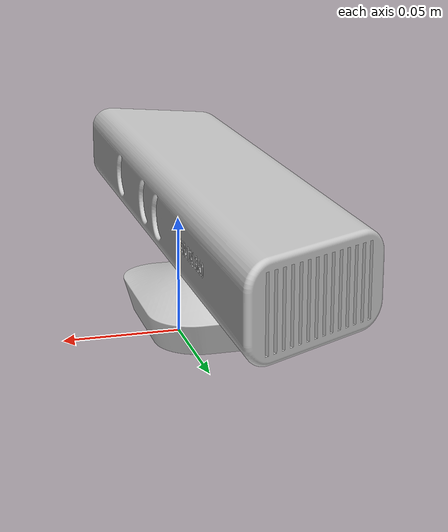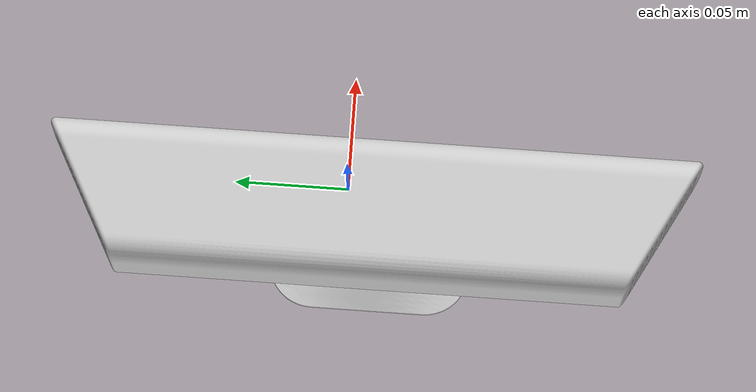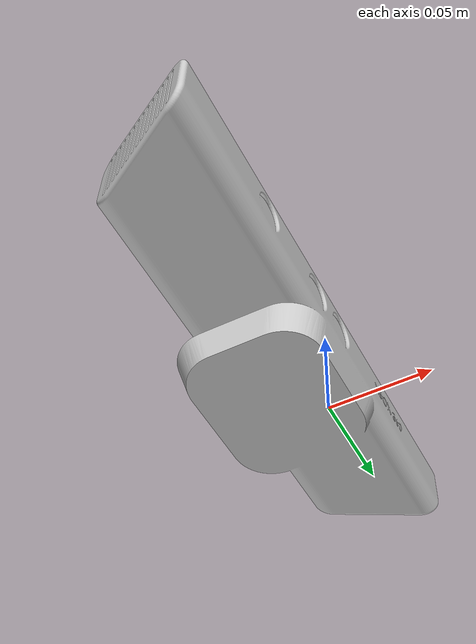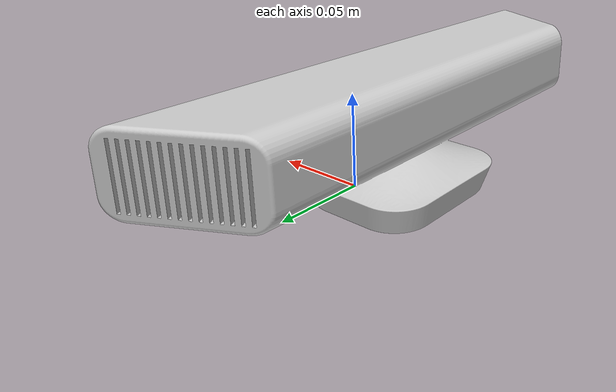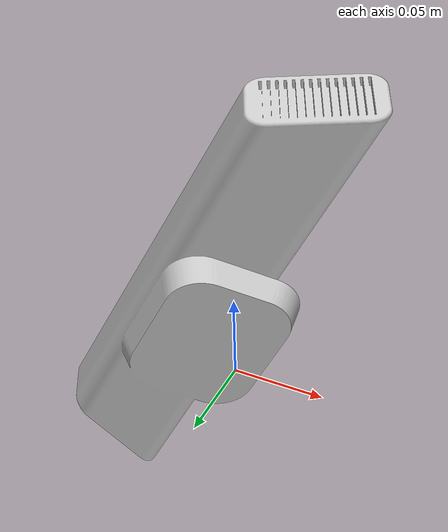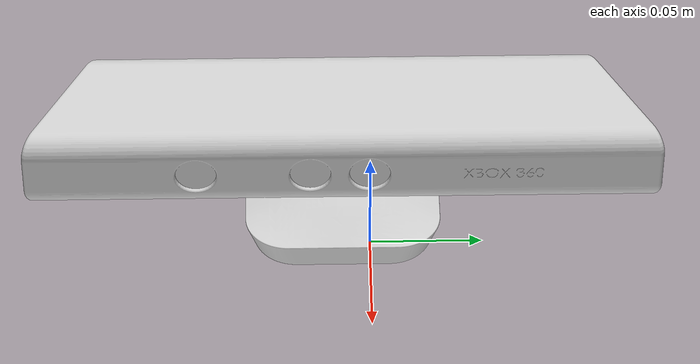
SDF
<?xml version="1.0" ?>
<sdf version="1.5">
	<model name="kinect_xbox_360_sensor">
		<static>1</static>
		<pose>0 0 0.0504 0 0 0</pose>
		<link name="link">
			<inertial>
				<mass>0.1</mass>
			</inertial>
			<collision name="collision">
				<pose>-0.02 -0.0117 -0.015 0 0 0</pose>
				<geometry>
					<box>
						<size>0.0728 0.2794 0.0708</size>
					</box>
				</geometry>
			</collision>
			<visual name="visual">
				<transparency>0</transparency>
				<geometry>
					<mesh>
						<uri>model://kinect_xbox_360_sensor/meshes/kinect_xbox_360_sensor.stl</uri>
					</mesh>
				</geometry>
				<material>
					<script>
						<name>SensorPlacementOptimization/LightGray</name>
						<uri>file://materials/sensor_placement_optimization.material</uri>
					</script>
				</material>
			</visual>
			<sensor name="sensor" type="depth">
				<update_rate>30</update_rate>
				<camera>
					<horizontal_fov>0.994838</horizontal_fov>
					<image>
						<width>640</width>
						<height>480</height>
						<format>B8G8R8</format>
					</image>
					<clip>
						<near>0.4</near>
						<far>4.0</far>
					</clip>
				</camera>
			</sensor>
		</link>
	</model>
</sdf>
